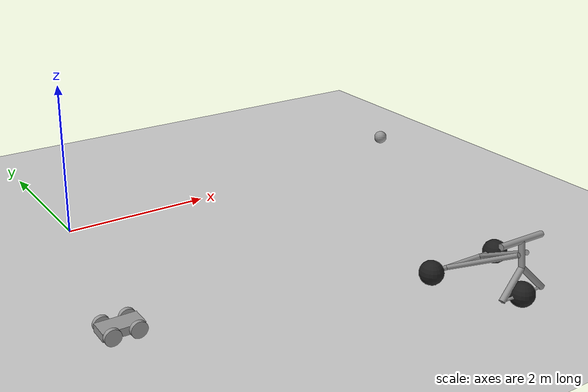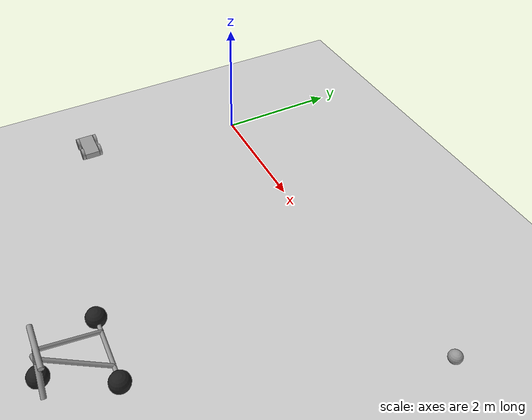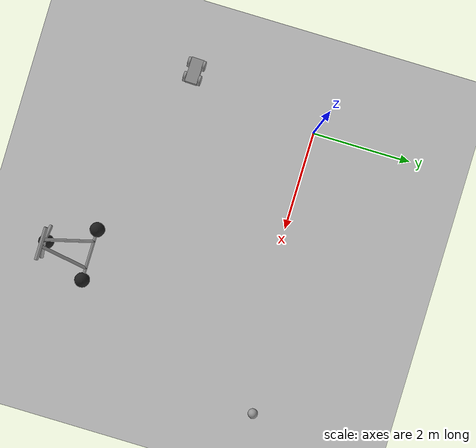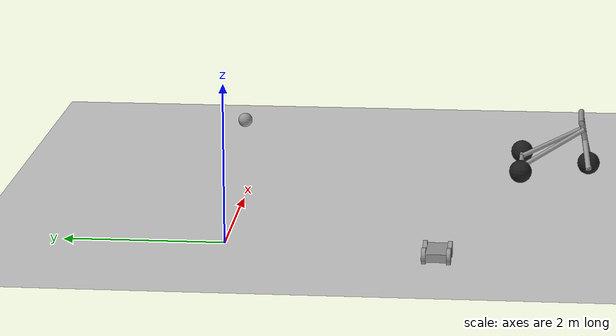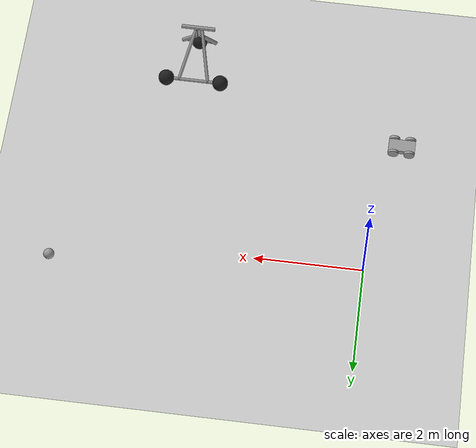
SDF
<sdf version="1.6">
 <world name="default">
  <model name="ground_plane">
   <static>1</static>
   <link name="link">
    <collision name="collision">
     <geometry><plane><normal>0 0 1</normal><size>100 100</size></plane></geometry>
     <surface><friction><ode><mu>100</mu><mu2>50</mu2></ode></friction></surface>
    </collision>
    <visual name="visual">
     <cast_shadows>0</cast_shadows>
     <geometry><plane><normal>0 0 1</normal><size>100 100</size></plane></geometry>
     <material>
      <script><uri>file://media/materials/scripts/gazebo.material</uri><name>Gazebo/Grey</name></script>
     </material>
    </visual>
   </link>
  </model>
  <model name="Car_0">
   <link name="link_0">
    <inertial>
     <mass>1</mass>
     <inertia>
      <ixx>0.166667</ixx>
      <ixy>0</ixy>
      <ixz>0</ixz>
      <iyy>0.166667</iyy>
      <iyz>0</iyz>
      <izz>0.166667</izz>
     </inertia>
    </inertial>
    <visual name="visual">
     <geometry><box><size>0.25 0.5 0.1</size></box></geometry>
     <material>
      <lighting>1</lighting>
      <script><uri>file://media/materials/scripts/gazebo.material</uri><name>Gazebo/Grey</name></script>
      <ambient>0.3 0.3 0.3 1</ambient>
      <diffuse>0.7 0.7 0.7 1</diffuse>
      <specular>0.01 0.01 0.01 1</specular>
      <emissive>0 0 0 1</emissive>
      <shader type="vertex"><normal_map>__default__</normal_map></shader>
     </material>
    </visual>
    <collision name="collision">
     <geometry><box><size>0.25 0.5 0.1</size></box></geometry>
     <surface>
      <friction>
       <ode><mu>1</mu><mu2>1</mu2><fdir1>0 0 0</fdir1><slip1>0</slip1><slip2>0</slip2></ode>
       <torsional>
        <coefficient>1</coefficient>
        <patch_radius>0</patch_radius>
        <surface_radius>0</surface_radius>
        <use_patch_radius>1</use_patch_radius>
        <ode><slip>0</slip></ode>
       </torsional>
      </friction>
      <bounce><restitution_coefficient>0</restitution_coefficient><threshold>1e+06</threshold></bounce>
      <contact>
       <collide_without_contact>0</collide_without_contact>
       <collide_without_contact_bitmask>1</collide_without_contact_bitmask>
       <collide_bitmask>1</collide_bitmask>
       <ode>
        <soft_cfm>0</soft_cfm>
        <soft_erp>0.2</soft_erp>
        <kp>1e+13</kp>
        <kd>1</kd>
        <max_vel>0.01</max_vel>
        <min_depth>0</min_depth>
       </ode>
       <bullet>
        <split_impulse>1</split_impulse>
        <split_impulse_penetration_threshold>-0.01</split_impulse_penetration_threshold>
        <soft_cfm>0</soft_cfm>
        <soft_erp>0.2</soft_erp>
        <kp>1e+13</kp>
        <kd>1</kd>
       </bullet>
      </contact>
     </surface>
    </collision>
   </link>
   <link name="link_1">
    <pose>-0.15001 0.15 0 0 1.5707 0</pose>
    <inertial>
     <mass>1</mass>
     <inertia><ixx>0.145833</ixx><ixy>0</ixy><ixz>0</ixz><iyy>0.145833</iyy><iyz>0</iyz><izz>0.125</izz></inertia>
    </inertial>
    <visual name="visual">
     <geometry><cylinder><radius>0.1</radius><length>0.05</length></cylinder></geometry>
     <material>
      <lighting>1</lighting>
      <script><uri>file://media/materials/scripts/gazebo.material</uri><name>Gazebo/Grey</name></script>
      <ambient>0.3 0.3 0.3 1</ambient>
      <diffuse>0.7 0.7 0.7 1</diffuse>
      <specular>0.01 0.01 0.01 1</specular>
      <emissive>0 0 0 1</emissive>
      <shader type="vertex"><normal_map>__default__</normal_map></shader>
     </material>
    </visual>
    <collision name="collision">
     <geometry><cylinder><radius>0.1</radius><length>0.05</length></cylinder></geometry>
     <surface>
      <friction>
       <ode><mu>1</mu><mu2>1</mu2><fdir1>0 0 0</fdir1><slip1>0</slip1><slip2>0</slip2></ode>
       <torsional>
        <coefficient>1</coefficient>
        <patch_radius>0</patch_radius>
        <surface_radius>0</surface_radius>
        <use_patch_radius>1</use_patch_radius>
        <ode><slip>0</slip></ode>
       </torsional>
      </friction>
      <bounce><restitution_coefficient>0</restitution_coefficient><threshold>1e+06</threshold></bounce>
      <contact>
       <collide_without_contact>0</collide_without_contact>
       <collide_without_contact_bitmask>1</collide_without_contact_bitmask>
       <collide_bitmask>1</collide_bitmask>
       <ode>
        <soft_cfm>0</soft_cfm>
        <soft_erp>0.2</soft_erp>
        <kp>1e+13</kp>
        <kd>1</kd>
        <max_vel>0.01</max_vel>
        <min_depth>0</min_depth>
       </ode>
       <bullet>
        <split_impulse>1</split_impulse>
        <split_impulse_penetration_threshold>-0.01</split_impulse_penetration_threshold>
        <soft_cfm>0</soft_cfm>
        <soft_erp>0.2</soft_erp>
        <kp>1e+13</kp>
        <kd>1</kd>
       </bullet>
      </contact>
     </surface>
    </collision>
   </link>
   <link name="link_1_clone">
    <pose>0.15001 -0.15 0 0 1.5707 0</pose>
    <inertial>
     <mass>1</mass>
     <inertia><ixx>0.145833</ixx><ixy>0</ixy><ixz>0</ixz><iyy>0.145833</iyy><iyz>0</iyz><izz>0.125</izz></inertia>
    </inertial>
    <visual name="visual">
     <geometry><cylinder><radius>0.1</radius><length>0.05</length></cylinder></geometry>
     <material>
      <lighting>1</lighting>
      <script><uri>file://media/materials/scripts/gazebo.material</uri><name>Gazebo/Grey</name></script>
      <ambient>0.3 0.3 0.3 1</ambient>
      <diffuse>0.7 0.7 0.7 1</diffuse>
      <specular>0.01 0.01 0.01 1</specular>
      <emissive>0 0 0 1</emissive>
      <shader type="vertex"><normal_map>__default__</normal_map></shader>
     </material>
    </visual>
    <collision name="collision">
     <geometry><cylinder><radius>0.1</radius><length>0.05</length></cylinder></geometry>
     <surface>
      <friction>
       <ode><mu>1</mu><mu2>1</mu2><fdir1>0 0 0</fdir1><slip1>0</slip1><slip2>0</slip2></ode>
       <torsional>
        <coefficient>1</coefficient>
        <patch_radius>0</patch_radius>
        <surface_radius>0</surface_radius>
        <use_patch_radius>1</use_patch_radius>
        <ode><slip>0</slip></ode>
       </torsional>
      </friction>
      <bounce><restitution_coefficient>0</restitution_coefficient><threshold>1e+06</threshold></bounce>
      <contact>
       <collide_without_contact>0</collide_without_contact>
       <collide_without_contact_bitmask>1</collide_without_contact_bitmask>
       <collide_bitmask>1</collide_bitmask>
       <ode>
        <soft_cfm>0</soft_cfm>
        <soft_erp>0.2</soft_erp>
        <kp>1e+13</kp>
        <kd>1</kd>
        <max_vel>0.01</max_vel>
        <min_depth>0</min_depth>
       </ode>
       <bullet>
        <split_impulse>1</split_impulse>
        <split_impulse_penetration_threshold>-0.01</split_impulse_penetration_threshold>
        <soft_cfm>0</soft_cfm>
        <soft_erp>0.2</soft_erp>
        <kp>1e+13</kp>
        <kd>1</kd>
       </bullet>
      </contact>
     </surface>
    </collision>
   </link>
   <link name="link_1_clone_0">
    <pose>-0.15001 -0.15 0 0 1.5707 0</pose>
    <inertial>
     <mass>1</mass>
     <inertia><ixx>0.145833</ixx><ixy>0</ixy><ixz>0</ixz><iyy>0.145833</iyy><iyz>0</iyz><izz>0.125</izz></inertia>
    </inertial>
    <visual name="visual">
     <geometry><cylinder><radius>0.1</radius><length>0.05</length></cylinder></geometry>
     <material>
      <lighting>1</lighting>
      <script><uri>file://media/materials/scripts/gazebo.material</uri><name>Gazebo/Grey</name></script>
      <ambient>0.3 0.3 0.3 1</ambient>
      <diffuse>0.7 0.7 0.7 1</diffuse>
      <specular>0.01 0.01 0.01 1</specular>
      <emissive>0 0 0 1</emissive>
      <shader type="vertex"><normal_map>__default__</normal_map></shader>
     </material>
    </visual>
    <collision name="collision">
     <geometry><cylinder><radius>0.1</radius><length>0.05</length></cylinder></geometry>
     <surface>
      <friction>
       <ode><mu>1</mu><mu2>1</mu2><fdir1>0 0 0</fdir1><slip1>0</slip1><slip2>0</slip2></ode>
       <torsional>
        <coefficient>1</coefficient>
        <patch_radius>0</patch_radius>
        <surface_radius>0</surface_radius>
        <use_patch_radius>1</use_patch_radius>
        <ode><slip>0</slip></ode>
       </torsional>
      </friction>
      <bounce><restitution_coefficient>0</restitution_coefficient><threshold>1e+06</threshold></bounce>
      <contact>
       <collide_without_contact>0</collide_without_contact>
       <collide_without_contact_bitmask>1</collide_without_contact_bitmask>
       <collide_bitmask>1</collide_bitmask>
       <ode>
        <soft_cfm>0</soft_cfm>
        <soft_erp>0.2</soft_erp>
        <kp>1e+13</kp>
        <kd>1</kd>
        <max_vel>0.01</max_vel>
        <min_depth>0</min_depth>
       </ode>
       <bullet>
        <split_impulse>1</split_impulse>
        <split_impulse_penetration_threshold>-0.01</split_impulse_penetration_threshold>
        <soft_cfm>0</soft_cfm>
        <soft_erp>0.2</soft_erp>
        <kp>1e+13</kp>
        <kd>1</kd>
       </bullet>
      </contact>
     </surface>
    </collision>
   </link>
   <link name="link_1_clone_clone">
    <pose>0.15001 0.15 0 0 1.5707 0</pose>
    <inertial>
     <mass>1</mass>
     <inertia><ixx>0.145833</ixx><ixy>0</ixy><ixz>0</ixz><iyy>0.145833</iyy><iyz>0</iyz><izz>0.125</izz></inertia>
    </inertial>
    <visual name="visual">
     <geometry><cylinder><radius>0.1</radius><length>0.05</length></cylinder></geometry>
     <material>
      <lighting>1</lighting>
      <script><uri>file://media/materials/scripts/gazebo.material</uri><name>Gazebo/Grey</name></script>
      <ambient>0.3 0.3 0.3 1</ambient>
      <diffuse>0.7 0.7 0.7 1</diffuse>
      <specular>0.01 0.01 0.01 1</specular>
      <emissive>0 0 0 1</emissive>
      <shader type="vertex"><normal_map>__default__</normal_map></shader>
     </material>
    </visual>
    <collision name="collision">
     <geometry><cylinder><radius>0.1</radius><length>0.05</length></cylinder></geometry>
     <surface>
      <friction>
       <ode><mu>1</mu><mu2>1</mu2><fdir1>0 0 0</fdir1><slip1>0</slip1><slip2>0</slip2></ode>
       <torsional>
        <coefficient>1</coefficient>
        <patch_radius>0</patch_radius>
        <surface_radius>0</surface_radius>
        <use_patch_radius>1</use_patch_radius>
        <ode><slip>0</slip></ode>
       </torsional>
      </friction>
      <bounce><restitution_coefficient>0</restitution_coefficient><threshold>1e+06</threshold></bounce>
      <contact>
       <collide_without_contact>0</collide_without_contact>
       <collide_without_contact_bitmask>1</collide_without_contact_bitmask>
       <collide_bitmask>1</collide_bitmask>
       <ode>
        <soft_cfm>0</soft_cfm>
        <soft_erp>0.2</soft_erp>
        <kp>1e+13</kp>
        <kd>1</kd>
        <max_vel>0.01</max_vel>
        <min_depth>0</min_depth>
       </ode>
       <bullet>
        <split_impulse>1</split_impulse>
        <split_impulse_penetration_threshold>-0.01</split_impulse_penetration_threshold>
        <soft_cfm>0</soft_cfm>
        <soft_erp>0.2</soft_erp>
        <kp>1e+13</kp>
        <kd>1</kd>
       </bullet>
      </contact>
     </surface>
    </collision>
   </link>
   <joint name="link_0_JOINT_0" type="revolute">
    <parent>link_0</parent>
    <child>link_1</child>
    <axis>
     <xyz>0 0 1</xyz>
     <use_parent_model_frame>0</use_parent_model_frame>
     <limit>
      <lower>-1.79769e+308</lower>
      <upper>1.79769e+308</upper>
      <effort>-1</effort>
      <velocity>-1</velocity>
     </limit>
     <dynamics>
      <spring_reference>0</spring_reference>
      <spring_stiffness>0</spring_stiffness>
      <damping>0</damping>
     </dynamics>
    </axis>
    <physics>
     <ode><limit><cfm>0</cfm><erp>0.2</erp></limit><suspension><cfm>0</cfm><erp>0.2</erp></suspension></ode>
    </physics>
   </joint>
   <joint name="link_0_JOINT_1" type="revolute">
    <parent>link_0</parent>
    <child>link_1_clone_0</child>
    <axis>
     <xyz>0 0 1</xyz>
     <use_parent_model_frame>0</use_parent_model_frame>
     <limit>
      <lower>-1.79769e+308</lower>
      <upper>1.79769e+308</upper>
      <effort>-1</effort>
      <velocity>-1</velocity>
     </limit>
     <dynamics>
      <spring_reference>0</spring_reference>
      <spring_stiffness>0</spring_stiffness>
      <damping>0</damping>
     </dynamics>
    </axis>
    <physics>
     <ode><limit><cfm>0</cfm><erp>0.2</erp></limit><suspension><cfm>0</cfm><erp>0.2</erp></suspension></ode>
    </physics>
   </joint>
   <joint name="link_0_JOINT_2" type="revolute">
    <parent>link_0</parent>
    <child>link_1_clone_clone</child>
    <axis>
     <xyz>0 0 1</xyz>
     <use_parent_model_frame>0</use_parent_model_frame>
     <limit>
      <lower>-1.79769e+308</lower>
      <upper>1.79769e+308</upper>
      <effort>-1</effort>
      <velocity>-1</velocity>
     </limit>
     <dynamics>
      <spring_reference>0</spring_reference>
      <spring_stiffness>0</spring_stiffness>
      <damping>0</damping>
     </dynamics>
    </axis>
    <physics>
     <ode><limit><cfm>0</cfm><erp>0.2</erp></limit><suspension><cfm>0</cfm><erp>0.2</erp></suspension></ode>
    </physics>
   </joint>
   <joint name="link_0_JOINT_3" type="revolute">
    <parent>link_0</parent>
    <child>link_1_clone</child>
    <axis>
     <xyz>0 0 1</xyz>
     <use_parent_model_frame>0</use_parent_model_frame>
     <limit>
      <lower>-1.79769e+308</lower>
      <upper>1.79769e+308</upper>
      <effort>-1</effort>
      <velocity>-1</velocity>
     </limit>
     <dynamics>
      <spring_reference>0</spring_reference>
      <spring_stiffness>0</spring_stiffness>
      <damping>0</damping>
     </dynamics>
    </axis>
    <physics>
     <ode><limit><cfm>0</cfm><erp>0.2</erp></limit><suspension><cfm>0</cfm><erp>0.2</erp></suspension></ode>
    </physics>
   </joint>
   <static>0</static>
   <pose>-0.482669 -2.62807 0.100002 -2e-06 2e-06 -1.58682</pose>
  </model>
  <model name="trisphere_cycle">
   <link name="frame">
    <pose>-0.408559 0 0.385023 0 -0.522021 0</pose>
    <inertial>
     <mass>10</mass>
     <inertia><ixx>0.228</ixx><iyy>0.743521</iyy><izz>0.965521</izz><ixy>0</ixy><ixz>0</ixz><iyz>0</iyz></inertia>
    </inertial>
    <collision name="axle_collision">
     <pose>-0.471335 0 0 1.5708 -0 0</pose>
     <geometry><cylinder><length>1.03923</length><radius>0.03</radius></cylinder></geometry>
    </collision>
    <visual name="axle_visual">
     <pose>-0.471335 0 0 1.5708 -0 0</pose>
     <geometry><cylinder><length>1.03923</length><radius>0.03</radius></cylinder></geometry>
     <material>
      <script><uri>file://media/materials/scripts/gazebo.material</uri><name>Gazebo/Grey</name></script>
     </material>
    </visual>
    <collision name="frame_left_collision">
     <pose>0 0.171552 0 2.986 1.57079 2.76675</pose>
     <geometry><cylinder><length>1.00317</length><radius>0.03</radius></cylinder></geometry>
    </collision>
    <visual name="frame_left_visual">
     <pose>0 0.171552 0 2.986 1.57079 2.76675</pose>
     <geometry><cylinder><length>1.00317</length><radius>0.03</radius></cylinder></geometry>
     <material>
      <script><uri>file://media/materials/scripts/gazebo.material</uri><name>Gazebo/Grey</name></script>
     </material>
    </visual>
    <collision name="frame_right_collision">
     <pose>0 -0.171552 0 -2.986 1.57079 -2.76675</pose>
     <geometry><cylinder><length>1.00317</length><radius>0.03</radius></cylinder></geometry>
    </collision>
    <visual name="frame_right_visual">
     <pose>0 -0.171552 0 -2.986 1.57079 -2.76675</pose>
     <geometry><cylinder><length>1.00317</length><radius>0.03</radius></cylinder></geometry>
     <material>
      <script><uri>file://media/materials/scripts/gazebo.material</uri><name>Gazebo/Grey</name></script>
     </material>
    </visual>
   </link>
   <link name="fork">
    <pose>0.041441 0 0.385023 0 -0.174533 0</pose>
    <inertial>
     <mass>3</mass>
     <inertia>
      <ixx>0.158203</ixx>
      <iyy>0.0583594</iyy>
      <izz>0.102656</izz>
      <ixy>0</ixy>
      <ixz>0</ixz>
      <iyz>0</iyz>
     </inertia>
    </inertial>
    <collision name="handlebars_collision">
     <pose>0 0 0.397748 1.5708 -0 0</pose>
     <geometry><cylinder><length>0.636396</length><radius>0.0375</radius></cylinder></geometry>
    </collision>
    <visual name="handlebars_visual">
     <pose>0 0 0.397748 1.5708 -0 0</pose>
     <geometry><cylinder><length>0.636396</length><radius>0.0375</radius></cylinder></geometry>
     <material>
      <script><uri>file://media/materials/scripts/gazebo.material</uri><name>Gazebo/Grey</name></script>
     </material>
    </visual>
    <collision name="headtube_collision">
     <pose>0 0 0.238649 0 -0 0</pose>
     <geometry><cylinder><length>0.318198</length><radius>0.0375</radius></cylinder></geometry>
    </collision>
    <visual name="headtube_visual">
     <pose>0 0 0.238649 0 -0 0</pose>
     <geometry><cylinder><length>0.318198</length><radius>0.0375</radius></cylinder></geometry>
     <material>
      <script><uri>file://media/materials/scripts/gazebo.material</uri><name>Gazebo/Grey</name></script>
     </material>
    </visual>
    <collision name="spindle_collision">
     <pose>0 0 -0.238649 1.5708 -0 0</pose>
     <geometry><cylinder><length>0.636396</length><radius>0.015</radius></cylinder></geometry>
    </collision>
    <visual name="spindle_visual">
     <pose>0 0 -0.238649 1.5708 -0 0</pose>
     <geometry><cylinder><length>0.636396</length><radius>0.015</radius></cylinder></geometry>
     <material>
      <script><uri>file://media/materials/scripts/gazebo.material</uri><name>Gazebo/Grey</name></script>
     </material>
    </visual>
    <collision name="fork_left_collision">
     <pose>0 0.159099 -0.07955 0.785398 -0 0</pose>
     <geometry><cylinder><length>0.45</length><radius>0.0375</radius></cylinder></geometry>
    </collision>
    <visual name="fork_left_visual">
     <pose>0 0.159099 -0.07955 0.785398 -0 0</pose>
     <geometry><cylinder><length>0.45</length><radius>0.0375</radius></cylinder></geometry>
     <material>
      <script><uri>file://media/materials/scripts/gazebo.material</uri><name>Gazebo/Grey</name></script>
     </material>
    </visual>
    <collision name="fork_right_collision">
     <pose>0 -0.159099 -0.07955 -0.785398 0 0</pose>
     <geometry><cylinder><length>0.45</length><radius>0.0375</radius></cylinder></geometry>
    </collision>
    <visual name="fork_right_visual">
     <pose>0 -0.159099 -0.07955 -0.785398 0 0</pose>
     <geometry><cylinder><length>0.45</length><radius>0.0375</radius></cylinder></geometry>
     <material>
      <script><uri>file://media/materials/scripts/gazebo.material</uri><name>Gazebo/Grey</name></script>
     </material>
    </visual>
   </link>
   <link name="wheel_front">
    <pose>0.082882 0 0.15 0 -0 0</pose>
    <inertial>
     <mass>0.5</mass>
     <inertia><ixx>0.0045</ixx><iyy>0.0045</iyy><izz>0.0045</izz><ixy>0</ixy><ixz>0</ixz><iyz>0</iyz></inertia>
    </inertial>
    <collision name="collision">
     <geometry><sphere><radius>0.15</radius></sphere></geometry>
     <surface><contact><ode><kp>1e+08</kp><kd>1</kd><min_depth>0.0005</min_depth></ode></contact></surface>
    </collision>
    <visual name="visual">
     <geometry><sphere><radius>0.15</radius></sphere></geometry>
     <material>
      <script><uri>file://media/materials/scripts/gazebo.material</uri><name>Gazebo/Black</name></script>
     </material>
    </visual>
   </link>
   <joint name="wheel_front_steer" type="revolute">
    <parent>frame</parent>
    <child>fork</child>
    <axis>
     <xyz>0 0 1</xyz>
     <limit><lower>-0.959931</lower><upper>0.959931</upper></limit>
     <use_parent_model_frame>0</use_parent_model_frame>
     <dynamics><spring_reference>0</spring_reference><spring_stiffness>0</spring_stiffness></dynamics>
    </axis>
   </joint>
   <joint name="wheel_front_spin" type="revolute">
    <parent>fork</parent>
    <child>wheel_front</child>
    <axis>
     <xyz>0 1 0</xyz>
     <use_parent_model_frame>0</use_parent_model_frame>
     <limit><lower>-1e+16</lower><upper>1e+16</upper></limit>
     <dynamics><spring_reference>0</spring_reference><spring_stiffness>0</spring_stiffness></dynamics>
    </axis>
   </joint>
   <link name="wheel_rear_left">
    <pose>-0.817118 0.519615 0.15 0 -0 0</pose>
    <inertial>
     <mass>0.5</mass>
     <inertia><ixx>0.0045</ixx><iyy>0.0045</iyy><izz>0.0045</izz><ixy>0</ixy><ixz>0</ixz><iyz>0</iyz></inertia>
    </inertial>
    <collision name="collision">
     <geometry><sphere><radius>0.15</radius></sphere></geometry>
     <surface><contact><ode><kp>1e+08</kp><kd>1</kd><min_depth>0.0005</min_depth></ode></contact></surface>
    </collision>
    <visual name="visual">
     <geometry><sphere><radius>0.15</radius></sphere></geometry>
     <material>
      <script><uri>file://media/materials/scripts/gazebo.material</uri><name>Gazebo/Black</name></script>
     </material>
    </visual>
   </link>
   <joint name="wheel_rear_left_spin" type="revolute">
    <parent>frame</parent>
    <child>wheel_rear_left</child>
    <axis>
     <xyz>0 1 0</xyz>
     <use_parent_model_frame>0</use_parent_model_frame>
     <limit><lower>-1e+16</lower><upper>1e+16</upper></limit>
     <dynamics><spring_reference>0</spring_reference><spring_stiffness>0</spring_stiffness></dynamics>
    </axis>
   </joint>
   <link name="wheel_rear_right">
    <pose>-0.817118 -0.519615 0.15 0 -0 0</pose>
    <inertial>
     <mass>0.5</mass>
     <inertia><ixx>0.0045</ixx><iyy>0.0045</iyy><izz>0.0045</izz><ixy>0</ixy><ixz>0</ixz><iyz>0</iyz></inertia>
    </inertial>
    <collision name="collision">
     <geometry><sphere><radius>0.15</radius></sphere></geometry>
     <surface><contact><ode><kp>1e+08</kp><kd>1</kd><min_depth>0.0005</min_depth></ode></contact></surface>
    </collision>
    <visual name="visual">
     <geometry><sphere><radius>0.15</radius></sphere></geometry>
     <material>
      <script><uri>file://media/materials/scripts/gazebo.material</uri><name>Gazebo/Black</name></script>
     </material>
    </visual>
   </link>
   <joint name="wheel_rear_right_spin" type="revolute">
    <parent>frame</parent>
    <child>wheel_rear_right</child>
    <axis>
     <xyz>0 1 0</xyz>
     <use_parent_model_frame>0</use_parent_model_frame>
     <limit><lower>-1e+16</lower><upper>1e+16</upper></limit>
     <dynamics><spring_reference>0</spring_reference><spring_stiffness>0</spring_stiffness></dynamics>
    </axis>
   </joint>
   <pose>3.59653 -4.38414 -0.000501 0 1e-06 -1.5769</pose>
  </model>
  <model name="my_ball">
   <link name="link_0">
    <inertial>
     <mass>1</mass>
     <inertia><ixx>0.1</ixx><ixy>0</ixy><ixz>0</ixz><iyy>0.1</iyy><iyz>0</iyz><izz>0.1</izz></inertia>
    </inertial>
    <visual name="visual">
     <geometry><sphere><radius>0.1</radius></sphere></geometry>
     <material>
      <lighting>1</lighting>
      <script><uri>file://media/materials/scripts/gazebo.material</uri><name>Gazebo/Grey</name></script>
      <ambient>1 1 1 1</ambient>
      <diffuse>1 1 1 1</diffuse>
      <specular>1 1 1 1</specular>
      <emissive>1 1 1 1</emissive>
      <shader type="vertex"><normal_map>__default__</normal_map></shader>
     </material>
    </visual>
    <collision name="collision">
     <geometry><sphere><radius>0.1</radius></sphere></geometry>
     <surface>
      <friction>
       <ode><mu>1</mu><mu2>1</mu2><fdir1>0 0 0</fdir1><slip1>0</slip1><slip2>0</slip2></ode>
       <torsional>
        <coefficient>1</coefficient>
        <patch_radius>0</patch_radius>
        <surface_radius>0</surface_radius>
        <use_patch_radius>1</use_patch_radius>
        <ode><slip>0</slip></ode>
       </torsional>
      </friction>
      <bounce><restitution_coefficient>0</restitution_coefficient><threshold>1e+06</threshold></bounce>
      <contact>
       <collide_without_contact>0</collide_without_contact>
       <collide_without_contact_bitmask>1</collide_without_contact_bitmask>
       <collide_bitmask>1</collide_bitmask>
       <ode>
        <soft_cfm>0</soft_cfm>
        <soft_erp>0.2</soft_erp>
        <kp>1e+13</kp>
        <kd>1</kd>
        <max_vel>0.01</max_vel>
        <min_depth>0</min_depth>
       </ode>
       <bullet>
        <split_impulse>1</split_impulse>
        <split_impulse_penetration_threshold>-0.01</split_impulse_penetration_threshold>
        <soft_cfm>0</soft_cfm>
        <soft_erp>0.2</soft_erp>
        <kp>1e+13</kp>
        <kd>1</kd>
       </bullet>
      </contact>
     </surface>
    </collision>
   </link>
   <static>0</static>
   <pose>5.70137 0.427293 0.1 0 -0 0</pose>
  </model>
 </world>
</sdf>
